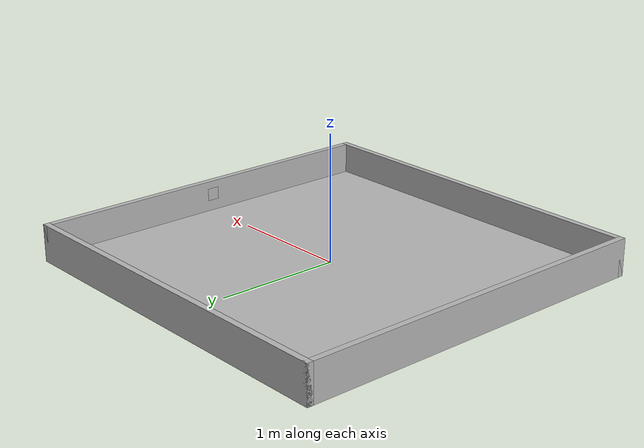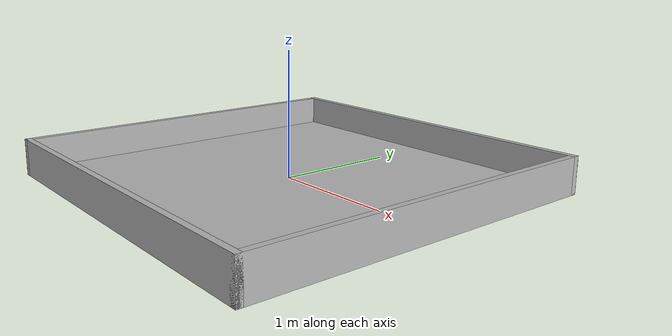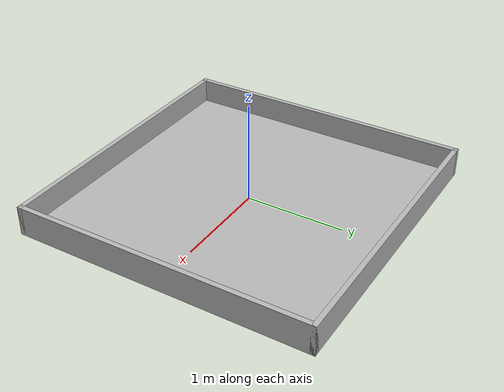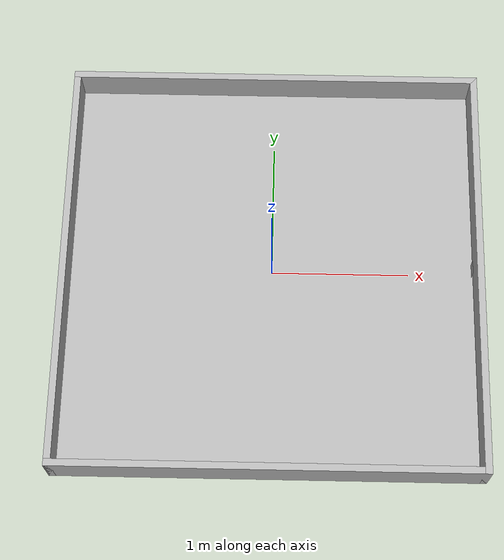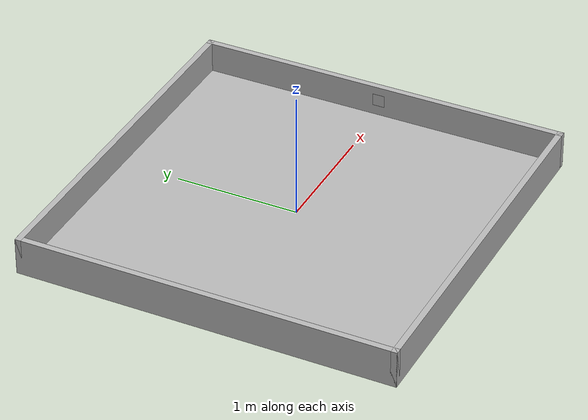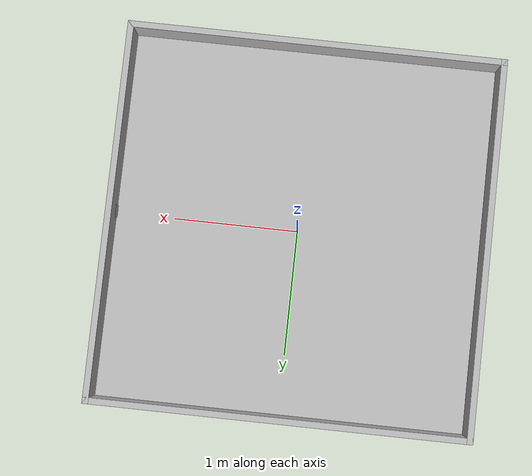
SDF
<?xml version="1.0" ?>

<sdf version="1.5">
	<world name="default">
		<!-- A global light source -->
		<include>
			<uri>model://sun</uri>
		</include>

		<!-- simulation table -->
		<include>
			<uri>model://simulation_table</uri>
		</include>

		<include>
			<name>Apriltag36_11_00000</name>
			<pose>1.45 0.0 0.15 1.5708 0 1.5708</pose>
			<static>true</static>
			<uri>model://Apriltag36_11_00000</uri>
		</include>
	</world>

</sdf>

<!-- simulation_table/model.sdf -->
<sdf version="1.8">
  <model name="simulation_table">
    <static>true</static>
    <link name="floor">
      <collision name="collision">
        <geometry>
          <plane>
            <normal>0 0 1</normal>
            <size>3.0 3.0</size>
          </plane>
        </geometry>
      </collision>
      <visual name="visual">
        <cast_shadows>false</cast_shadows>
        <geometry>
          <plane>
            <normal>0 0 1</normal>
            <size>3.0 3.0</size>
          </plane>
        </geometry>
        <material>
          <script>
            <uri>model://simulation_table/materials/scripts/</uri>
            <uri>model://simulation_table/materials/textures/</uri>
            <name>SimulationTable/Background</name>
          </script>
        </material>
      </visual>
    </link>
    <link name="side_1">
      <pose relative_to="floor">0.0 1.5 0.1 1.57079632679 0 0</pose>
      <collision name="collision">
        <geometry>
          <box>
            <size>3.05 0.3 0.05</size>
          </box>
        </geometry>
      </collision>
      <visual name="visual">
        <cast_shadows>false</cast_shadows>
        <geometry>
          <box>
            <size>3.05 0.3 0.05</size>
          </box>
        </geometry>
      </visual>
    </link>
    <link name="side_2">
      <pose relative_to="floor">0.0 -1.5 0.1 1.57079632679 0 0</pose>
      <collision name="collision">
        <geometry>
          <box>
            <size>3.05 0.3 0.05</size>
          </box>
        </geometry>
      </collision>
      <visual name="visual">
        <cast_shadows>false</cast_shadows>
        <geometry>
          <box>
            <size>3.05 0.3 0.05</size>
          </box>
        </geometry>
      </visual>
    </link>
    <link name="side_3">
      <pose relative_to="floor">1.5 0.0 0.1 1.57079632679 0 1.57079632679</pose>
      <collision name="collision">
        <geometry>
          <box>
            <size>3.05 0.3 0.05</size>
          </box>
        </geometry>
      </collision>
      <visual name="visual">
        <cast_shadows>false</cast_shadows>
        <geometry>
          <box>
            <size>3.05 0.3 0.05</size>
          </box>
        </geometry>
      </visual>
    </link>
    <link name="side_4">
      <pose relative_to="floor">-1.5 0.0 0.1 1.57079632679 0 1.57079632679</pose>
      <collision name="collision">
        <geometry>
          <box>
            <size>3.05 0.3 0.05</size>
          </box>
        </geometry>
      </collision>
      <visual name="visual">
        <cast_shadows>false</cast_shadows>
        <geometry>
          <box>
            <size>3.05 0.3 0.05</size>
          </box>
        </geometry>
      </visual>
    </link>
  </model>
</sdf>

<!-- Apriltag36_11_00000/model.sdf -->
<sdf version='1.6'>
  <model name='Apriltag36_11_00000'>
    <link name="link">
      <inertial>
        <pose>0 0 0 0 0 0</pose>
        <mass>0.5</mass>
        <inertia>
          <ixx>0.0001</ixx>
          <ixy>0</ixy>
          <ixz>0</ixz>
          <iyy>0.0001</iyy>
          <iyz>0</iyz>
          <izz>0.0001</izz>
        </inertia>
      </inertial>
      <collision name="collision">
        <pose>0 0 0 0 0 0</pose>
        <geometry>
          <mesh>
            <uri>model://Apriltag36_11_00000/meshes/tag36_11_00000.dae</uri>
          </mesh>
        </geometry>
        <surface>
          <friction>
            <ode>
              <mu>1.0</mu>
              <mu2>1.0</mu2>
            </ode>
          </friction>
          <contact>
            <ode>
              <kp>10000000.0</kp>
              <kd>1.0</kd>
              <min_depth>0.001</min_depth>
              <max_vel>0.1</max_vel>
            </ode>
          </contact>
        </surface>
      </collision>
      <visual name="visual">
        <pose>0 0 0 0 0 0</pose>
        <geometry>
          <mesh>
            <uri>model://Apriltag36_11_00000/meshes/tag36_11_00000.dae</uri>
          </mesh>
        </geometry>
      </visual>
    </link>
  </model>
</sdf>
